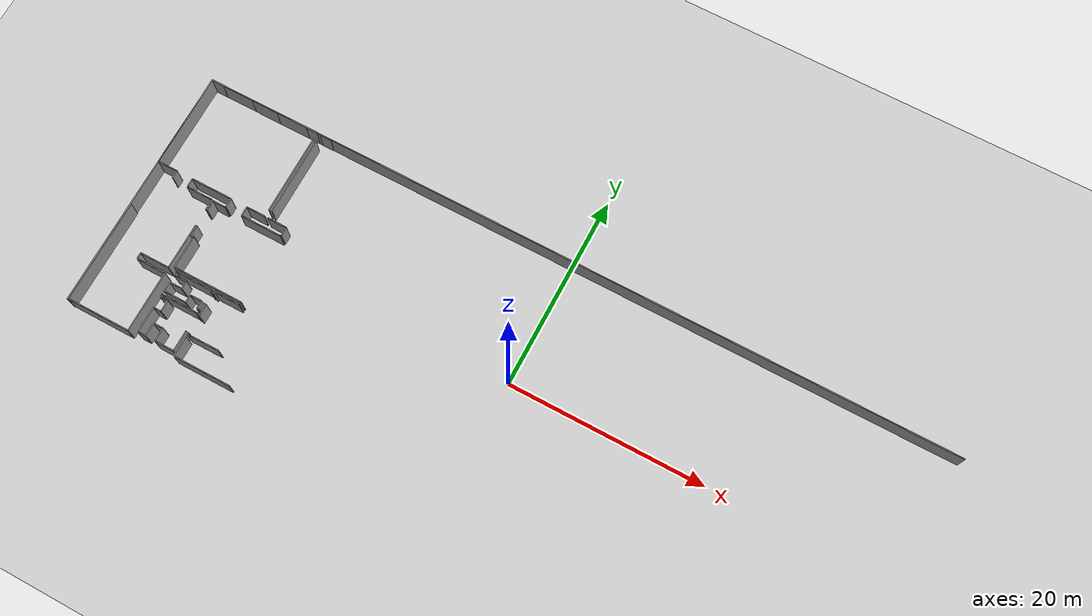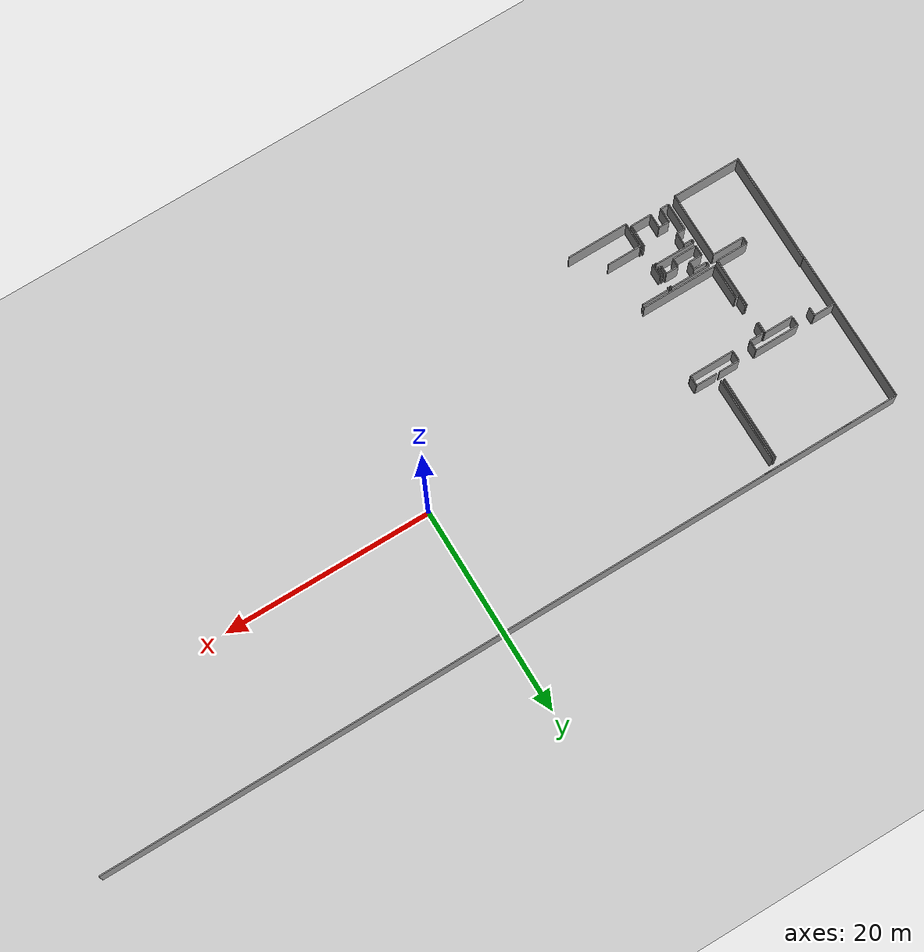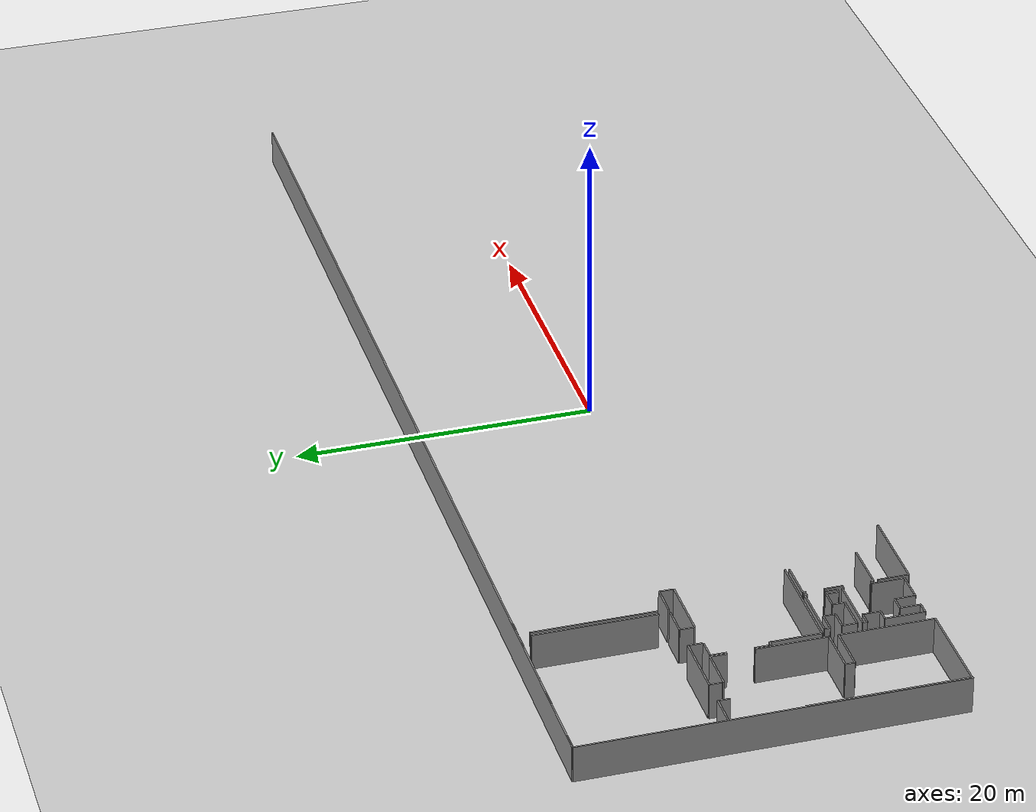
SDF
<sdf version="1.6">
 <world name="default">
  <model name="ground_plane">
   <static>1</static>
   <link name="link">
    <collision name="collision">
     <geometry><plane><normal>0 0 1</normal><size>100 100</size></plane></geometry>
     <surface><friction><ode><mu>100</mu><mu2>50</mu2></ode></friction></surface>
    </collision>
    <visual name="visual">
     <cast_shadows>0</cast_shadows>
     <geometry><plane><normal>0 0 1</normal><size>100 100</size></plane></geometry>
     <material>
      <script><uri>file://media/materials/scripts/gazebo.material</uri><name>Gazebo/Grey</name></script>
     </material>
    </visual>
   </link>
  </model>
  <model name="50052751">
   <static>1</static>
   <link name="Wall_0">
    <collision name="Wall_0_Collision">
     <geometry><box><size>2.06881151815 0.1 2.5</size></box></geometry>
     <pose>1.03440575908 0 1.25 0 0 0</pose>
    </collision>
    <visual name="Wall_0_Visual">
     <pose>1.03440575908 0 1.25 0 0 0</pose>
     <geometry><box><size>2.06881151815 0.1 2.5</size></box></geometry>
     <material>
      <script><uri>file://media/materials/scripts/gazebo.material</uri><name>Gazebo/Grey</name></script>
      <ambient>1 1 1 1</ambient>
     </material>
    </visual>
    <pose>0.0 -9.61859063008 0 0 0 0.0</pose>
   </link>
   <link name="Wall_1">
    <collision name="Wall_1_Collision">
     <geometry><box><size>0.788015965856 0.1 2.5</size></box></geometry>
     <pose>0.394007982928 0 1.25 0 0 0</pose>
    </collision>
    <visual name="Wall_1_Visual">
     <pose>0.394007982928 0 1.25 0 0 0</pose>
     <geometry><box><size>0.788015965856 0.1 2.5</size></box></geometry>
     <material>
      <script><uri>file://media/materials/scripts/gazebo.material</uri><name>Gazebo/Grey</name></script>
      <ambient>1 1 1 1</ambient>
     </material>
    </visual>
    <pose>2.06881151815 -9.61859063008 0 0 0 -1.57079632679</pose>
   </link>
   <link name="Wall_2">
    <collision name="Wall_2_Collision">
     <geometry><box><size>0.789919079603 0.1 2.5</size></box></geometry>
     <pose>0.394959539802 0 1.25 0 0 0</pose>
    </collision>
    <visual name="Wall_2_Visual">
     <pose>0.394959539802 0 1.25 0 0 0</pose>
     <geometry><box><size>0.789919079603 0.1 2.5</size></box></geometry>
     <material>
      <script><uri>file://media/materials/scripts/gazebo.material</uri><name>Gazebo/Grey</name></script>
      <ambient>1 1 1 1</ambient>
     </material>
    </visual>
    <pose>3.77565080146 -10.4066065959 0 0 0 1.57079632679</pose>
   </link>
   <link name="Wall_3">
    <collision name="Wall_3_Collision">
     <geometry><box><size>4.24952612468 0.1 2.5</size></box></geometry>
     <pose>2.12476306234 0 1.25 0 0 0</pose>
    </collision>
    <visual name="Wall_3_Visual">
     <pose>2.12476306234 0 1.25 0 0 0</pose>
     <geometry><box><size>4.24952612468 0.1 2.5</size></box></geometry>
     <material>
      <script><uri>file://media/materials/scripts/gazebo.material</uri><name>Gazebo/Grey</name></script>
      <ambient>1 1 1 1</ambient>
     </material>
    </visual>
    <pose>3.77565080146 -9.61668751634 0 0 0 0.0</pose>
   </link>
   <link name="Wall_4">
    <collision name="Wall_4_Collision">
     <geometry><box><size>0.919077065957 0.1 2.5</size></box></geometry>
     <pose>0.459538532978 0 1.25 0 0 0</pose>
    </collision>
    <visual name="Wall_4_Visual">
     <pose>0.459538532978 0 1.25 0 0 0</pose>
     <geometry><box><size>0.919077065957 0.1 2.5</size></box></geometry>
     <material>
      <script><uri>file://media/materials/scripts/gazebo.material</uri><name>Gazebo/Grey</name></script>
      <ambient>1 1 1 1</ambient>
     </material>
    </visual>
    <pose>8.02517692614 -9.61668751634 0 0 0 -1.57079632679</pose>
   </link>
   <link name="Wall_5">
    <collision name="Wall_5_Collision">
     <geometry><box><size>0.919077065957 0.1 2.5</size></box></geometry>
     <pose>0.459538532978 0 1.25 0 0 0</pose>
    </collision>
    <visual name="Wall_5_Visual">
     <pose>0.459538532978 0 1.25 0 0 0</pose>
     <geometry><box><size>0.919077065957 0.1 2.5</size></box></geometry>
     <material>
      <script><uri>file://media/materials/scripts/gazebo.material</uri><name>Gazebo/Grey</name></script>
      <ambient>1 1 1 1</ambient>
     </material>
    </visual>
    <pose>9.77096660416 -10.5357645823 0 0 0 1.57079632679</pose>
   </link>
   <link name="Wall_6">
    <collision name="Wall_6_Collision">
     <geometry><box><size>1.95551281303 0.1 2.5</size></box></geometry>
     <pose>0.977756406515 0 1.25 0 0 0</pose>
    </collision>
    <visual name="Wall_6_Visual">
     <pose>0.977756406515 0 1.25 0 0 0</pose>
     <geometry><box><size>1.95551281303 0.1 2.5</size></box></geometry>
     <material>
      <script><uri>file://media/materials/scripts/gazebo.material</uri><name>Gazebo/Grey</name></script>
      <ambient>1 1 1 1</ambient>
     </material>
    </visual>
    <pose>9.77096660416 -9.61668751634 0 0 0 0.0</pose>
   </link>
   <link name="Wall_7">
    <collision name="Wall_7_Collision">
     <geometry><box><size>8.12515383503 0.1 2.5</size></box></geometry>
     <pose>4.06257691751 0 1.25 0 0 0</pose>
    </collision>
    <visual name="Wall_7_Visual">
     <pose>4.06257691751 0 1.25 0 0 0</pose>
     <geometry><box><size>8.12515383503 0.1 2.5</size></box></geometry>
     <material>
      <script><uri>file://media/materials/scripts/gazebo.material</uri><name>Gazebo/Grey</name></script>
      <ambient>1 1 1 1</ambient>
     </material>
    </visual>
    <pose>11.7264794172 -8.89629552565 0 0 0 1.57079632679</pose>
   </link>
   <link name="Wall_8">
    <collision name="Wall_8_Collision">
     <geometry><box><size>1.17663179316 0.1 2.5</size></box></geometry>
     <pose>0.588315896582 0 1.25 0 0 0</pose>
    </collision>
    <visual name="Wall_8_Visual">
     <pose>0.588315896582 0 1.25 0 0 0</pose>
     <geometry><box><size>1.17663179316 0.1 2.5</size></box></geometry>
     <material>
      <script><uri>file://media/materials/scripts/gazebo.material</uri><name>Gazebo/Grey</name></script>
      <ambient>1 1 1 1</ambient>
     </material>
    </visual>
    <pose>11.7264794172 -0.00786620349107 0 0 0 3.14159265359</pose>
   </link>
   <link name="Wall_9">
    <collision name="Wall_9_Collision">
     <geometry><box><size>2.75025311413 0.1 2.5</size></box></geometry>
     <pose>1.37512655706 0 1.25 0 0 0</pose>
    </collision>
    <visual name="Wall_9_Visual">
     <pose>1.37512655706 0 1.25 0 0 0</pose>
     <geometry><box><size>2.75025311413 0.1 2.5</size></box></geometry>
     <material>
      <script><uri>file://media/materials/scripts/gazebo.material</uri><name>Gazebo/Grey</name></script>
      <ambient>1 1 1 1</ambient>
     </material>
    </visual>
    <pose>7.28232819323 -0.00786620349107 0 0 0 3.14159265359</pose>
   </link>
   <link name="Wall_10">
    <collision name="Wall_10_Collision">
     <geometry><box><size>1.28675864204 0.1 2.5</size></box></geometry>
     <pose>0.64337932102 0 1.25 0 0 0</pose>
    </collision>
    <visual name="Wall_10_Visual">
     <pose>0.64337932102 0 1.25 0 0 0</pose>
     <geometry><box><size>1.28675864204 0.1 2.5</size></box></geometry>
     <material>
      <script><uri>file://media/materials/scripts/gazebo.material</uri><name>Gazebo/Grey</name></script>
      <ambient>1 1 1 1</ambient>
     </material>
    </visual>
    <pose>1.28980362404 -0.00786620349107 0 0 0 3.14159265359</pose>
   </link>
   <link name="Wall_11">
    <collision name="Wall_11_Collision">
     <geometry><box><size>9.61072490897 0.1 2.5</size></box></geometry>
     <pose>4.80536245448 0 1.25 0 0 0</pose>
    </collision>
    <visual name="Wall_11_Visual">
     <pose>4.80536245448 0 1.25 0 0 0</pose>
     <geometry><box><size>9.61072490897 0.1 2.5</size></box></geometry>
     <material>
      <script><uri>file://media/materials/scripts/gazebo.material</uri><name>Gazebo/Grey</name></script>
      <ambient>1 1 1 1</ambient>
     </material>
    </visual>
    <pose>0.00304498199655 -0.00786620349107 0 0 0 -1.57111315847</pose>
   </link>
   <link name="Wall_12">
    <collision name="Wall_12_Collision">
     <geometry><box><size>10.5143228341 0.1 2.5</size></box></geometry>
     <pose>5.25716141703 0 1.25 0 0 0</pose>
    </collision>
    <visual name="Wall_12_Visual">
     <pose>5.25716141703 0 1.25 0 0 0</pose>
     <geometry><box><size>10.5143228341 0.1 2.5</size></box></geometry>
     <material>
      <script><uri>file://media/materials/scripts/gazebo.material</uri><name>Gazebo/Grey</name></script>
      <ambient>1 1 1 1</ambient>
     </material>
    </visual>
    <pose>0.0749826816649 -24.9932122276 0 0 0 1.57079632679</pose>
   </link>
   <link name="Wall_13">
    <collision name="Wall_13_Collision">
     <geometry><box><size>2.73617007239 0.1 2.5</size></box></geometry>
     <pose>1.3680850362 0 1.25 0 0 0</pose>
    </collision>
    <visual name="Wall_13_Visual">
     <pose>1.3680850362 0 1.25 0 0 0</pose>
     <geometry><box><size>2.73617007239 0.1 2.5</size></box></geometry>
     <material>
      <script><uri>file://media/materials/scripts/gazebo.material</uri><name>Gazebo/Grey</name></script>
      <ambient>1 1 1 1</ambient>
     </material>
    </visual>
    <pose>3.78732323245 -10.5291671213 0 0 0 0.0</pose>
   </link>
   <link name="Wall_14">
    <collision name="Wall_14_Collision">
     <geometry><box><size>1.10824657249 0.1 2.5</size></box></geometry>
     <pose>0.554123286246 0 1.25 0 0 0</pose>
    </collision>
    <visual name="Wall_14_Visual">
     <pose>0.554123286246 0 1.25 0 0 0</pose>
     <geometry><box><size>1.10824657249 0.1 2.5</size></box></geometry>
     <material>
      <script><uri>file://media/materials/scripts/gazebo.material</uri><name>Gazebo/Grey</name></script>
      <ambient>1 1 1 1</ambient>
     </material>
    </visual>
    <pose>6.52349330485 -10.5291671213 0 0 0 -1.57079632679</pose>
   </link>
   <link name="Wall_15">
    <collision name="Wall_15_Collision">
     <geometry><box><size>4.72378207064 0.1 2.5</size></box></geometry>
     <pose>2.36189103532 0 1.25 0 0 0</pose>
    </collision>
    <visual name="Wall_15_Visual">
     <pose>2.36189103532 0 1.25 0 0 0</pose>
     <geometry><box><size>4.72378207064 0.1 2.5</size></box></geometry>
     <material>
      <script><uri>file://media/materials/scripts/gazebo.material</uri><name>Gazebo/Grey</name></script>
      <ambient>1 1 1 1</ambient>
     </material>
    </visual>
    <pose>6.52349330485 -13.4069288565 0 0 0 -1.57079632679</pose>
   </link>
   <link name="Wall_16">
    <collision name="Wall_16_Collision">
     <geometry><box><size>3.02810772131 0.1 2.5</size></box></geometry>
     <pose>1.51405386066 0 1.25 0 0 0</pose>
    </collision>
    <visual name="Wall_16_Visual">
     <pose>1.51405386066 0 1.25 0 0 0</pose>
     <geometry><box><size>3.02810772131 0.1 2.5</size></box></geometry>
     <material>
      <script><uri>file://media/materials/scripts/gazebo.material</uri><name>Gazebo/Grey</name></script>
      <ambient>1 1 1 1</ambient>
     </material>
    </visual>
    <pose>6.52349330485 -18.1307109272 0 0 0 3.14159265359</pose>
   </link>
   <link name="Wall_17">
    <collision name="Wall_17_Collision">
     <geometry><box><size>0.614198243553 0.1 2.5</size></box></geometry>
     <pose>0.307099121776 0 1.25 0 0 0</pose>
    </collision>
    <visual name="Wall_17_Visual">
     <pose>0.307099121776 0 1.25 0 0 0</pose>
     <geometry><box><size>0.614198243553 0.1 2.5</size></box></geometry>
     <material>
      <script><uri>file://media/materials/scripts/gazebo.material</uri><name>Gazebo/Grey</name></script>
      <ambient>1 1 1 1</ambient>
     </material>
    </visual>
    <pose>3.49538558353 -18.1307109272 0 0 0 -1.57079632679</pose>
   </link>
   <link name="Wall_18">
    <collision name="Wall_18_Collision">
     <geometry><box><size>3.02810772131 0.1 2.5</size></box></geometry>
     <pose>1.51405386066 0 1.25 0 0 0</pose>
    </collision>
    <visual name="Wall_18_Visual">
     <pose>1.51405386066 0 1.25 0 0 0</pose>
     <geometry><box><size>3.02810772131 0.1 2.5</size></box></geometry>
     <material>
      <script><uri>file://media/materials/scripts/gazebo.material</uri><name>Gazebo/Grey</name></script>
      <ambient>1 1 1 1</ambient>
     </material>
    </visual>
    <pose>3.49538558353 -18.7449091707 0 0 0 0.0</pose>
   </link>
   <link name="Wall_19">
    <collision name="Wall_19_Collision">
     <geometry><box><size>6.24081747617 0.1 2.5</size></box></geometry>
     <pose>3.12040873808 0 1.25 0 0 0</pose>
    </collision>
    <visual name="Wall_19_Visual">
     <pose>3.12040873808 0 1.25 0 0 0</pose>
     <geometry><box><size>6.24081747617 0.1 2.5</size></box></geometry>
     <material>
      <script><uri>file://media/materials/scripts/gazebo.material</uri><name>Gazebo/Grey</name></script>
      <ambient>1 1 1 1</ambient>
     </material>
    </visual>
    <pose>6.52349330485 -18.7449091707 0 0 0 -1.57079632679</pose>
   </link>
   <link name="Wall_20">
    <collision name="Wall_20_Collision">
     <geometry><box><size>6.4485149679 0.1 2.5</size></box></geometry>
     <pose>3.22425748395 0 1.25 0 0 0</pose>
    </collision>
    <visual name="Wall_20_Visual">
     <pose>3.22425748395 0 1.25 0 0 0</pose>
     <geometry><box><size>6.4485149679 0.1 2.5</size></box></geometry>
     <material>
      <script><uri>file://media/materials/scripts/gazebo.material</uri><name>Gazebo/Grey</name></script>
      <ambient>1 1 1 1</ambient>
     </material>
    </visual>
    <pose>6.52349330485 -24.9857266469 0 0 0 -3.14043183091</pose>
   </link>
   <link name="Wall_21">
    <collision name="Wall_21_Collision">
     <geometry><box><size>3.3520176812 0.1 2.5</size></box></geometry>
     <pose>1.6760088406 0 1.25 0 0 0</pose>
    </collision>
    <visual name="Wall_21_Visual">
     <pose>1.6760088406 0 1.25 0 0 0</pose>
     <geometry><box><size>3.3520176812 0.1 2.5</size></box></geometry>
     <material>
      <script><uri>file://media/materials/scripts/gazebo.material</uri><name>Gazebo/Grey</name></script>
      <ambient>1 1 1 1</ambient>
     </material>
    </visual>
    <pose>6.97567313133 -17.8328101885 0 0 0 1.57079632679</pose>
   </link>
   <link name="Wall_22">
    <collision name="Wall_22_Collision">
     <geometry><box><size>0.312745025895 0.1 2.5</size></box></geometry>
     <pose>0.156372512948 0 1.25 0 0 0</pose>
    </collision>
    <visual name="Wall_22_Visual">
     <pose>0.156372512948 0 1.25 0 0 0</pose>
     <geometry><box><size>0.312745025895 0.1 2.5</size></box></geometry>
     <material>
      <script><uri>file://media/materials/scripts/gazebo.material</uri><name>Gazebo/Grey</name></script>
      <ambient>1 1 1 1</ambient>
     </material>
    </visual>
    <pose>6.97567313133 -14.4807925073 0 0 0 3.14159265359</pose>
   </link>
   <link name="Wall_23">
    <collision name="Wall_23_Collision">
     <geometry><box><size>1.07310240528 0.1 2.5</size></box></geometry>
     <pose>0.536551202641 0 1.25 0 0 0</pose>
    </collision>
    <visual name="Wall_23_Visual">
     <pose>0.536551202641 0 1.25 0 0 0</pose>
     <geometry><box><size>1.07310240528 0.1 2.5</size></box></geometry>
     <material>
      <script><uri>file://media/materials/scripts/gazebo.material</uri><name>Gazebo/Grey</name></script>
      <ambient>1 1 1 1</ambient>
     </material>
    </visual>
    <pose>6.66292810544 -14.4807925073 0 0 0 1.57079632679</pose>
   </link>
   <link name="Wall_24">
    <collision name="Wall_24_Collision">
     <geometry><box><size>1.04709318406 0.1 2.5</size></box></geometry>
     <pose>0.523546592031 0 1.25 0 0 0</pose>
    </collision>
    <visual name="Wall_24_Visual">
     <pose>0.523546592031 0 1.25 0 0 0</pose>
     <geometry><box><size>1.04709318406 0.1 2.5</size></box></geometry>
     <material>
      <script><uri>file://media/materials/scripts/gazebo.material</uri><name>Gazebo/Grey</name></script>
      <ambient>1 1 1 1</ambient>
     </material>
    </visual>
    <pose>6.66292810544 -11.639570556 0 0 0 1.57079632679</pose>
   </link>
   <link name="Wall_25">
    <collision name="Wall_25_Collision">
     <geometry><box><size>1.33852333598 0.1 2.5</size></box></geometry>
     <pose>0.66926166799 0 1.25 0 0 0</pose>
    </collision>
    <visual name="Wall_25_Visual">
     <pose>0.66926166799 0 1.25 0 0 0</pose>
     <geometry><box><size>1.33852333598 0.1 2.5</size></box></geometry>
     <material>
      <script><uri>file://media/materials/scripts/gazebo.material</uri><name>Gazebo/Grey</name></script>
      <ambient>1 1 1 1</ambient>
     </material>
    </visual>
    <pose>6.66292810544 -10.592477372 0 0 0 0.0</pose>
   </link>
   <link name="Wall_26">
    <collision name="Wall_26_Collision">
     <geometry><box><size>4.28708090263 0.1 2.5</size></box></geometry>
     <pose>2.14354045132 0 1.25 0 0 0</pose>
    </collision>
    <visual name="Wall_26_Visual">
     <pose>2.14354045132 0 1.25 0 0 0</pose>
     <geometry><box><size>4.28708090263 0.1 2.5</size></box></geometry>
     <material>
      <script><uri>file://media/materials/scripts/gazebo.material</uri><name>Gazebo/Grey</name></script>
      <ambient>1 1 1 1</ambient>
     </material>
    </visual>
    <pose>9.75345795768 -10.592477372 0 0 0 0.0</pose>
   </link>
   <link name="Wall_33">
    <collision name="Wall_33_Collision">
     <geometry><box><size>7.18932945877 0.1 2.5</size></box></geometry>
     <pose>3.59466472939 0 1.25 0 0 0</pose>
    </collision>
    <visual name="Wall_33_Visual">
     <pose>3.59466472939 0 1.25 0 0 0</pose>
     <geometry><box><size>7.18932945877 0.1 2.5</size></box></geometry>
     <material>
      <script><uri>file://media/materials/scripts/gazebo.material</uri><name>Gazebo/Grey</name></script>
      <ambient>1 1 1 1</ambient>
     </material>
    </visual>
    <pose>14.1650024994 -17.8339520568 0 0 0 3.14143382539</pose>
   </link>
   <link name="Wall_34">
    <collision name="Wall_34_Collision">
     <geometry><box><size>0.203125674019 0.1 2.5</size></box></geometry>
     <pose>0.10156283701 0 1.25 0 0 0</pose>
    </collision>
    <visual name="Wall_34_Visual">
     <pose>0.10156283701 0 1.25 0 0 0</pose>
     <geometry><box><size>0.203125674019 0.1 2.5</size></box></geometry>
     <material>
      <script><uri>file://media/materials/scripts/gazebo.material</uri><name>Gazebo/Grey</name></script>
      <ambient>1 1 1 1</ambient>
     </material>
    </visual>
    <pose>11.465372211 -22.7219094067 0 0 0 1.57079632679</pose>
   </link>
   <link name="Wall_35">
    <collision name="Wall_35_Collision">
     <geometry><box><size>1.24032266659 0.1 2.5</size></box></geometry>
     <pose>0.620161333296 0 1.25 0 0 0</pose>
    </collision>
    <visual name="Wall_35_Visual">
     <pose>0.620161333296 0 1.25 0 0 0</pose>
     <geometry><box><size>1.24032266659 0.1 2.5</size></box></geometry>
     <material>
      <script><uri>file://media/materials/scripts/gazebo.material</uri><name>Gazebo/Grey</name></script>
      <ambient>1 1 1 1</ambient>
     </material>
    </visual>
    <pose>11.465372211 -20.7415292407 0 0 0 1.57079632679</pose>
   </link>
   <link name="Wall_36">
    <collision name="Wall_36_Collision">
     <geometry><box><size>0.219492452251 0.1 2.5</size></box></geometry>
     <pose>0.109746226125 0 1.25 0 0 0</pose>
    </collision>
    <visual name="Wall_36_Visual">
     <pose>0.109746226125 0 1.25 0 0 0</pose>
     <geometry><box><size>0.219492452251 0.1 2.5</size></box></geometry>
     <material>
      <script><uri>file://media/materials/scripts/gazebo.material</uri><name>Gazebo/Grey</name></script>
      <ambient>1 1 1 1</ambient>
     </material>
    </visual>
    <pose>11.465372211 -18.3295228767 0 0 0 1.57079632679</pose>
   </link>
   <link name="Wall_37">
    <collision name="Wall_37_Collision">
     <geometry><box><size>2.68009165396 0.1 2.5</size></box></geometry>
     <pose>1.34004582698 0 1.25 0 0 0</pose>
    </collision>
    <visual name="Wall_37_Visual">
     <pose>1.34004582698 0 1.25 0 0 0</pose>
     <geometry><box><size>2.68009165396 0.1 2.5</size></box></geometry>
     <material>
      <script><uri>file://media/materials/scripts/gazebo.material</uri><name>Gazebo/Grey</name></script>
      <ambient>1 1 1 1</ambient>
     </material>
    </visual>
    <pose>11.465372211 -18.1100304244 0 0 0 0.0</pose>
   </link>
   <link name="Wall_42">
    <collision name="Wall_42_Collision">
     <geometry><box><size>3.27159515163 0.1 2.5</size></box></geometry>
     <pose>1.63579757582 0 1.25 0 0 0</pose>
    </collision>
    <visual name="Wall_42_Visual">
     <pose>1.63579757582 0 1.25 0 0 0</pose>
     <geometry><box><size>3.27159515163 0.1 2.5</size></box></geometry>
     <material>
      <script><uri>file://media/materials/scripts/gazebo.material</uri><name>Gazebo/Grey</name></script>
      <ambient>1 1 1 1</ambient>
     </material>
    </visual>
    <pose>14.7369516178 -22.7117594667 0 0 0 -3.13849020485</pose>
   </link>
   <link name="Wall_43">
    <collision name="Wall_43_Collision">
     <geometry><box><size>5.82492368514 0.1 2.5</size></box></geometry>
     <pose>2.91246184257 0 1.25 0 0 0</pose>
    </collision>
    <visual name="Wall_43_Visual">
     <pose>2.91246184257 0 1.25 0 0 0</pose>
     <geometry><box><size>5.82492368514 0.1 2.5</size></box></geometry>
     <material>
      <script><uri>file://media/materials/scripts/gazebo.material</uri><name>Gazebo/Grey</name></script>
      <ambient>1 1 1 1</ambient>
     </material>
    </visual>
    <pose>11.4799627497 -25.0432006821 0 0 0 0.0</pose>
   </link>
   <link name="Wall_51">
    <collision name="Wall_51_Collision">
     <geometry><box><size>2.04561685838 0.1 2.5</size></box></geometry>
     <pose>1.02280842919 0 1.25 0 0 0</pose>
    </collision>
    <visual name="Wall_51_Visual">
     <pose>1.02280842919 0 1.25 0 0 0</pose>
     <geometry><box><size>2.04561685838 0.1 2.5</size></box></geometry>
     <material>
      <script><uri>file://media/materials/scripts/gazebo.material</uri><name>Gazebo/Grey</name></script>
      <ambient>1 1 1 1</ambient>
     </material>
    </visual>
    <pose>11.489732067 -22.9976071516 0 0 0 -1.57557207663</pose>
   </link>
   <link name="Wall_52">
    <collision name="Wall_52_Collision">
     <geometry><box><size>2.61855764278 0.1 2.5</size></box></geometry>
     <pose>1.30927882139 0 1.25 0 0 0</pose>
    </collision>
    <visual name="Wall_52_Visual">
     <pose>1.30927882139 0 1.25 0 0 0</pose>
     <geometry><box><size>2.61855764278 0.1 2.5</size></box></geometry>
     <material>
      <script><uri>file://media/materials/scripts/gazebo.material</uri><name>Gazebo/Grey</name></script>
      <ambient>1 1 1 1</ambient>
     </material>
    </visual>
    <pose>7.38205135362 -24.6492561363 0 0 0 1.57079632679</pose>
   </link>
   <link name="Wall_53">
    <collision name="Wall_53_Collision">
     <geometry><box><size>0.806032109335 0.1 2.5</size></box></geometry>
     <pose>0.403016054668 0 1.25 0 0 0</pose>
    </collision>
    <visual name="Wall_53_Visual">
     <pose>0.403016054668 0 1.25 0 0 0</pose>
     <geometry><box><size>0.806032109335 0.1 2.5</size></box></geometry>
     <material>
      <script><uri>file://media/materials/scripts/gazebo.material</uri><name>Gazebo/Grey</name></script>
      <ambient>1 1 1 1</ambient>
     </material>
    </visual>
    <pose>7.38205135362 -22.0306984935 0 0 0 0.0</pose>
   </link>
   <link name="Wall_54">
    <collision name="Wall_54_Collision">
     <geometry><box><size>1.16381749393 0.1 2.5</size></box></geometry>
     <pose>0.581908746965 0 1.25 0 0 0</pose>
    </collision>
    <visual name="Wall_54_Visual">
     <pose>0.581908746965 0 1.25 0 0 0</pose>
     <geometry><box><size>1.16381749393 0.1 2.5</size></box></geometry>
     <material>
      <script><uri>file://media/materials/scripts/gazebo.material</uri><name>Gazebo/Grey</name></script>
      <ambient>1 1 1 1</ambient>
     </material>
    </visual>
    <pose>8.18808346296 -22.0306984935 0 0 0 1.57079632679</pose>
   </link>
   <link name="Wall_55">
    <collision name="Wall_55_Collision">
     <geometry><box><size>0.820368899569 0.1 2.5</size></box></geometry>
     <pose>0.410184449784 0 1.25 0 0 0</pose>
    </collision>
    <visual name="Wall_55_Visual">
     <pose>0.410184449784 0 1.25 0 0 0</pose>
     <geometry><box><size>0.820368899569 0.1 2.5</size></box></geometry>
     <material>
      <script><uri>file://media/materials/scripts/gazebo.material</uri><name>Gazebo/Grey</name></script>
      <ambient>1 1 1 1</ambient>
     </material>
    </visual>
    <pose>8.18808346296 -20.8668809996 0 0 0 3.14159265359</pose>
   </link>
   <link name="Wall_56">
    <collision name="Wall_56_Collision">
     <geometry><box><size>0.276585864686 0.1 2.5</size></box></geometry>
     <pose>0.138292932343 0 1.25 0 0 0</pose>
    </collision>
    <visual name="Wall_56_Visual">
     <pose>0.138292932343 0 1.25 0 0 0</pose>
     <geometry><box><size>0.276585864686 0.1 2.5</size></box></geometry>
     <material>
      <script><uri>file://media/materials/scripts/gazebo.material</uri><name>Gazebo/Grey</name></script>
      <ambient>1 1 1 1</ambient>
     </material>
    </visual>
    <pose>7.36771456339 -20.8668809996 0 0 0 1.57079632679</pose>
   </link>
   <link name="Wall_57">
    <collision name="Wall_57_Collision">
     <geometry><box><size>3.8286842379 0.1 2.5</size></box></geometry>
     <pose>1.91434211895 0 1.25 0 0 0</pose>
    </collision>
    <visual name="Wall_57_Visual">
     <pose>1.91434211895 0 1.25 0 0 0</pose>
     <geometry><box><size>3.8286842379 0.1 2.5</size></box></geometry>
     <material>
      <script><uri>file://media/materials/scripts/gazebo.material</uri><name>Gazebo/Grey</name></script>
      <ambient>1 1 1 1</ambient>
     </material>
    </visual>
    <pose>7.36771456339 -20.5902951349 0 0 0 0.0</pose>
   </link>
   <link name="Wall_58">
    <collision name="Wall_58_Collision">
     <geometry><box><size>0.129665483353 0.1 2.5</size></box></geometry>
     <pose>0.0648327416764 0 1.25 0 0 0</pose>
    </collision>
    <visual name="Wall_58_Visual">
     <pose>0.0648327416764 0 1.25 0 0 0</pose>
     <geometry><box><size>0.129665483353 0.1 2.5</size></box></geometry>
     <material>
      <script><uri>file://media/materials/scripts/gazebo.material</uri><name>Gazebo/Grey</name></script>
      <ambient>1 1 1 1</ambient>
     </material>
    </visual>
    <pose>11.1963988013 -20.5902951349 0 0 0 -1.57079632679</pose>
   </link>
   <link name="Wall_59">
    <collision name="Wall_59_Collision">
     <geometry><box><size>2.15026478656 0.1 2.5</size></box></geometry>
     <pose>1.07513239328 0 1.25 0 0 0</pose>
    </collision>
    <visual name="Wall_59_Visual">
     <pose>1.07513239328 0 1.25 0 0 0</pose>
     <geometry><box><size>2.15026478656 0.1 2.5</size></box></geometry>
     <material>
      <script><uri>file://media/materials/scripts/gazebo.material</uri><name>Gazebo/Grey</name></script>
      <ambient>1 1 1 1</ambient>
     </material>
    </visual>
    <pose>11.1963988013 -22.5038125712 0 0 0 -1.57079632679</pose>
   </link>
   <link name="Wall_60">
    <collision name="Wall_60_Collision">
     <geometry><box><size>1.99217947124 0.1 2.5</size></box></geometry>
     <pose>0.996089735619 0 1.25 0 0 0</pose>
    </collision>
    <visual name="Wall_60_Visual">
     <pose>0.996089735619 0 1.25 0 0 0</pose>
     <geometry><box><size>1.99217947124 0.1 2.5</size></box></geometry>
     <material>
      <script><uri>file://media/materials/scripts/gazebo.material</uri><name>Gazebo/Grey</name></script>
      <ambient>1 1 1 1</ambient>
     </material>
    </visual>
    <pose>11.1963988013 -24.6540773578 0 0 0 3.14159265359</pose>
   </link>
   <link name="Wall_61">
    <collision name="Wall_61_Collision">
     <geometry><box><size>1.35324074896 0.1 2.5</size></box></geometry>
     <pose>0.676620374482 0 1.25 0 0 0</pose>
    </collision>
    <visual name="Wall_61_Visual">
     <pose>0.676620374482 0 1.25 0 0 0</pose>
     <geometry><box><size>1.35324074896 0.1 2.5</size></box></geometry>
     <material>
      <script><uri>file://media/materials/scripts/gazebo.material</uri><name>Gazebo/Grey</name></script>
      <ambient>1 1 1 1</ambient>
     </material>
    </visual>
    <pose>9.20421933005 -24.6540773578 0 0 0 1.57079632679</pose>
   </link>
   <link name="Wall_62">
    <collision name="Wall_62_Collision">
     <geometry><box><size>1.00623967561 0.1 2.5</size></box></geometry>
     <pose>0.503119837804 0 1.25 0 0 0</pose>
    </collision>
    <visual name="Wall_62_Visual">
     <pose>0.503119837804 0 1.25 0 0 0</pose>
     <geometry><box><size>1.00623967561 0.1 2.5</size></box></geometry>
     <material>
      <script><uri>file://media/materials/scripts/gazebo.material</uri><name>Gazebo/Grey</name></script>
      <ambient>1 1 1 1</ambient>
     </material>
    </visual>
    <pose>9.20421933005 -23.3008366088 0 0 0 3.14159265359</pose>
   </link>
   <link name="Wall_63">
    <collision name="Wall_63_Collision">
     <geometry><box><size>1.34524767122 0.1 2.5</size></box></geometry>
     <pose>0.672623835612 0 1.25 0 0 0</pose>
    </collision>
    <visual name="Wall_63_Visual">
     <pose>0.672623835612 0 1.25 0 0 0</pose>
     <geometry><box><size>1.34524767122 0.1 2.5</size></box></geometry>
     <material>
      <script><uri>file://media/materials/scripts/gazebo.material</uri><name>Gazebo/Grey</name></script>
      <ambient>1 1 1 1</ambient>
     </material>
    </visual>
    <pose>8.19797965445 -23.3008366088 0 0 0 -1.57079632679</pose>
   </link>
   <link name="Wall_64">
    <collision name="Wall_64_Collision">
     <geometry><box><size>0.81593446597 0.1 2.5</size></box></geometry>
     <pose>0.407967232985 0 1.25 0 0 0</pose>
    </collision>
    <visual name="Wall_64_Visual">
     <pose>0.407967232985 0 1.25 0 0 0</pose>
     <geometry><box><size>0.81593446597 0.1 2.5</size></box></geometry>
     <material>
      <script><uri>file://media/materials/scripts/gazebo.material</uri><name>Gazebo/Grey</name></script>
      <ambient>1 1 1 1</ambient>
     </material>
    </visual>
    <pose>8.19797965445 -24.64608428 0 0 0 -3.13770525286</pose>
   </link>
   <link name="Wall_65">
    <collision name="Wall_65_Collision">
     <geometry><box><size>0.969699891649 0.1 2.5</size></box></geometry>
     <pose>0.484849945825 0 1.25 0 0 0</pose>
    </collision>
    <visual name="Wall_65_Visual">
     <pose>0.484849945825 0 1.25 0 0 0</pose>
     <geometry><box><size>0.969699891649 0.1 2.5</size></box></geometry>
     <material>
      <script><uri>file://media/materials/scripts/gazebo.material</uri><name>Gazebo/Grey</name></script>
      <ambient>1 1 1 1</ambient>
     </material>
    </visual>
    <pose>7.39588064686 -20.24354781 0 0 0 1.57079632679</pose>
   </link>
   <link name="Wall_66">
    <collision name="Wall_66_Collision">
     <geometry><box><size>1.28345991154 0.1 2.5</size></box></geometry>
     <pose>0.641729955772 0 1.25 0 0 0</pose>
    </collision>
    <visual name="Wall_66_Visual">
     <pose>0.641729955772 0 1.25 0 0 0</pose>
     <geometry><box><size>1.28345991154 0.1 2.5</size></box></geometry>
     <material>
      <script><uri>file://media/materials/scripts/gazebo.material</uri><name>Gazebo/Grey</name></script>
      <ambient>1 1 1 1</ambient>
     </material>
    </visual>
    <pose>7.39588064686 -19.2738479184 0 0 0 0.0</pose>
   </link>
   <link name="Wall_67">
    <collision name="Wall_67_Collision">
     <geometry><box><size>0.782179750362 0.1 2.5</size></box></geometry>
     <pose>0.391089875181 0 1.25 0 0 0</pose>
    </collision>
    <visual name="Wall_67_Visual">
     <pose>0.391089875181 0 1.25 0 0 0</pose>
     <geometry><box><size>0.782179750362 0.1 2.5</size></box></geometry>
     <material>
      <script><uri>file://media/materials/scripts/gazebo.material</uri><name>Gazebo/Grey</name></script>
      <ambient>1 1 1 1</ambient>
     </material>
    </visual>
    <pose>8.6793405584 -19.2738479184 0 0 0 1.57079632679</pose>
   </link>
   <link name="Wall_68">
    <collision name="Wall_68_Collision">
     <geometry><box><size>1.29728920478 0.1 2.5</size></box></geometry>
     <pose>0.648644602389 0 1.25 0 0 0</pose>
    </collision>
    <visual name="Wall_68_Visual">
     <pose>0.648644602389 0 1.25 0 0 0</pose>
     <geometry><box><size>1.29728920478 0.1 2.5</size></box></geometry>
     <material>
      <script><uri>file://media/materials/scripts/gazebo.material</uri><name>Gazebo/Grey</name></script>
      <ambient>1 1 1 1</ambient>
     </material>
    </visual>
    <pose>8.6793405584 -18.491668168 0 0 0 3.14159265359</pose>
   </link>
   <link name="Wall_69">
    <collision name="Wall_69_Collision">
     <geometry><box><size>0.367300953333 0.1 2.5</size></box></geometry>
     <pose>0.183650476667 0 1.25 0 0 0</pose>
    </collision>
    <visual name="Wall_69_Visual">
     <pose>0.183650476667 0 1.25 0 0 0</pose>
     <geometry><box><size>0.367300953333 0.1 2.5</size></box></geometry>
     <material>
      <script><uri>file://media/materials/scripts/gazebo.material</uri><name>Gazebo/Grey</name></script>
      <ambient>1 1 1 1</ambient>
     </material>
    </visual>
    <pose>7.38205135362 -18.491668168 0 0 0 1.57079632679</pose>
   </link>
   <link name="Wall_70">
    <collision name="Wall_70_Collision">
     <geometry><box><size>3.81751930392 0.1 2.5</size></box></geometry>
     <pose>1.90875965196 0 1.25 0 0 0</pose>
    </collision>
    <visual name="Wall_70_Visual">
     <pose>1.90875965196 0 1.25 0 0 0</pose>
     <geometry><box><size>3.81751930392 0.1 2.5</size></box></geometry>
     <material>
      <script><uri>file://media/materials/scripts/gazebo.material</uri><name>Gazebo/Grey</name></script>
      <ambient>1 1 1 1</ambient>
     </material>
    </visual>
    <pose>7.38205135362 -18.1243672147 0 0 0 0.0</pose>
   </link>
   <link name="Wall_71">
    <collision name="Wall_71_Collision">
     <geometry><box><size>0.189042632285 0.1 2.5</size></box></geometry>
     <pose>0.0945213161427 0 1.25 0 0 0</pose>
    </collision>
    <visual name="Wall_71_Visual">
     <pose>0.0945213161427 0 1.25 0 0 0</pose>
     <geometry><box><size>0.189042632285 0.1 2.5</size></box></geometry>
     <material>
      <script><uri>file://media/materials/scripts/gazebo.material</uri><name>Gazebo/Grey</name></script>
      <ambient>1 1 1 1</ambient>
     </material>
    </visual>
    <pose>11.1995706575 -18.1243672147 0 0 0 -1.57079632679</pose>
   </link>
   <link name="Wall_72">
    <collision name="Wall_72_Collision">
     <geometry><box><size>0.774313546871 0.1 2.5</size></box></geometry>
     <pose>0.387156773436 0 1.25 0 0 0</pose>
    </collision>
    <visual name="Wall_72_Visual">
     <pose>0.387156773436 0 1.25 0 0 0</pose>
     <geometry><box><size>0.774313546871 0.1 2.5</size></box></geometry>
     <material>
      <script><uri>file://media/materials/scripts/gazebo.material</uri><name>Gazebo/Grey</name></script>
      <ambient>1 1 1 1</ambient>
     </material>
    </visual>
    <pose>11.1995706575 -19.4725329936 0 0 0 -1.57079632679</pose>
   </link>
   <link name="Wall_73">
    <collision name="Wall_73_Collision">
     <geometry><box><size>0.292698894418 0.1 2.5</size></box></geometry>
     <pose>0.146349447209 0 1.25 0 0 0</pose>
    </collision>
    <visual name="Wall_73_Visual">
     <pose>0.146349447209 0 1.25 0 0 0</pose>
     <geometry><box><size>0.292698894418 0.1 2.5</size></box></geometry>
     <material>
      <script><uri>file://media/materials/scripts/gazebo.material</uri><name>Gazebo/Grey</name></script>
      <ambient>1 1 1 1</ambient>
     </material>
    </visual>
    <pose>11.1995706575 -20.2468465405 0 0 0 3.14159265359</pose>
   </link>
   <link name="Wall_74">
    <collision name="Wall_74_Collision">
     <geometry><box><size>0.81085333083 0.1 2.5</size></box></geometry>
     <pose>0.405426665415 0 1.25 0 0 0</pose>
    </collision>
    <visual name="Wall_74_Visual">
     <pose>0.405426665415 0 1.25 0 0 0</pose>
     <geometry><box><size>0.81085333083 0.1 2.5</size></box></geometry>
     <material>
      <script><uri>file://media/materials/scripts/gazebo.material</uri><name>Gazebo/Grey</name></script>
      <ambient>1 1 1 1</ambient>
     </material>
    </visual>
    <pose>10.9068717631 -20.2468465405 0 0 0 1.57079632679</pose>
   </link>
   <link name="Wall_75">
    <collision name="Wall_75_Collision">
     <geometry><box><size>1.1924910744 0.1 2.5</size></box></geometry>
     <pose>0.596245537198 0 1.25 0 0 0</pose>
    </collision>
    <visual name="Wall_75_Visual">
     <pose>0.596245537198 0 1.25 0 0 0</pose>
     <geometry><box><size>1.1924910744 0.1 2.5</size></box></geometry>
     <material>
      <script><uri>file://media/materials/scripts/gazebo.material</uri><name>Gazebo/Grey</name></script>
      <ambient>1 1 1 1</ambient>
     </material>
    </visual>
    <pose>10.9068717631 -19.4359932097 0 0 0 3.14159265359</pose>
   </link>
   <link name="Wall_76">
    <collision name="Wall_76_Collision">
     <geometry><box><size>0.80133776209 0.1 2.5</size></box></geometry>
     <pose>0.400668881045 0 1.25 0 0 0</pose>
    </collision>
    <visual name="Wall_76_Visual">
     <pose>0.400668881045 0 1.25 0 0 0</pose>
     <geometry><box><size>0.80133776209 0.1 2.5</size></box></geometry>
     <material>
      <script><uri>file://media/materials/scripts/gazebo.material</uri><name>Gazebo/Grey</name></script>
      <ambient>1 1 1 1</ambient>
     </material>
    </visual>
    <pose>9.71438068872 -19.4359932097 0 0 0 -1.57079632679</pose>
   </link>
   <link name="Wall_77">
    <collision name="Wall_77_Collision">
     <geometry><box><size>2.31850837678 0.1 2.5</size></box></geometry>
     <pose>1.15925418839 0 1.25 0 0 0</pose>
    </collision>
    <visual name="Wall_77_Visual">
     <pose>1.15925418839 0 1.25 0 0 0</pose>
     <geometry><box><size>2.31850837678 0.1 2.5</size></box></geometry>
     <material>
      <script><uri>file://media/materials/scripts/gazebo.material</uri><name>Gazebo/Grey</name></script>
      <ambient>1 1 1 1</ambient>
     </material>
    </visual>
    <pose>9.71438068872 -20.2373309718 0 0 0 -3.13891125474</pose>
   </link>
   <link name="Wall_78">
    <collision name="Wall_78_Collision">
     <geometry><box><size>8.1047270808 0.1 2.5</size></box></geometry>
     <pose>4.0523635404 0 1.25 0 0 0</pose>
    </collision>
    <visual name="Wall_78_Visual">
     <pose>4.0523635404 0 1.25 0 0 0</pose>
     <geometry><box><size>8.1047270808 0.1 2.5</size></box></geometry>
     <material>
      <script><uri>file://media/materials/scripts/gazebo.material</uri><name>Gazebo/Grey</name></script>
      <ambient>1 1 1 1</ambient>
     </material>
    </visual>
    <pose>12.0384631976 -8.88842932216 0 0 0 1.57079632679</pose>
   </link>
   <link name="Wall_79">
    <collision name="Wall_79_Collision">
     <geometry><box><size>1.22370213986 0.1 2.5</size></box></geometry>
     <pose>0.611851069931 0 1.25 0 0 0</pose>
    </collision>
    <visual name="Wall_79_Visual">
     <pose>0.611851069931 0 1.25 0 0 0</pose>
     <geometry><box><size>1.22370213986 0.1 2.5</size></box></geometry>
     <material>
      <script><uri>file://media/materials/scripts/gazebo.material</uri><name>Gazebo/Grey</name></script>
      <ambient>1 1 1 1</ambient>
     </material>
    </visual>
    <pose>12.0384631976 -0.0204267542268 0 0 0 0.0</pose>
   </link>
   <link name="Wall_84">
    <collision name="Wall_84_Collision">
     <geometry><box><size>0.897508443481 0.1 2.5</size></box></geometry>
     <pose>0.448754221741 0 1.25 0 0 0</pose>
    </collision>
    <visual name="Wall_84_Visual">
     <pose>0.448754221741 0 1.25 0 0 0</pose>
     <geometry><box><size>0.897508443481 0.1 2.5</size></box></geometry>
     <material>
      <script><uri>file://media/materials/scripts/gazebo.material</uri><name>Gazebo/Grey</name></script>
      <ambient>1 1 1 1</ambient>
     </material>
    </visual>
    <pose>14.0481513153 -10.5243458998 0 0 0 1.57079632679</pose>
   </link>
   <link name="Wall_85">
    <collision name="Wall_85_Collision">
     <geometry><box><size>2.00972978394 0.1 2.5</size></box></geometry>
     <pose>1.00486489197 0 1.25 0 0 0</pose>
    </collision>
    <visual name="Wall_85_Visual">
     <pose>1.00486489197 0 1.25 0 0 0</pose>
     <geometry><box><size>2.00972978394 0.1 2.5</size></box></geometry>
     <material>
      <script><uri>file://media/materials/scripts/gazebo.material</uri><name>Gazebo/Grey</name></script>
      <ambient>1 1 1 1</ambient>
     </material>
    </visual>
    <pose>14.0481513153 -9.62683745632 0 0 0 3.13515334865</pose>
   </link>
   <link name="Wall_266">
    <collision name="Wall_266_Collision">
     <geometry><box><size>25.0720011368 0.1 2.5</size></box></geometry>
     <pose>12.5360005684 0 1.25 0 0 0</pose>
    </collision>
    <visual name="Wall_266_Visual">
     <pose>12.5360005684 0 1.25 0 0 0</pose>
     <geometry><box><size>25.0720011368 0.1 2.5</size></box></geometry>
     <material>
      <script><uri>file://media/materials/scripts/gazebo.material</uri><name>Gazebo/Grey</name></script>
      <ambient>1 1 1 1</ambient>
     </material>
    </visual>
    <pose>0.0 -25.0720011368 0 0 0 1.57079632679</pose>
   </link>
   <link name="Wall_267">
    <collision name="Wall_267_Collision">
     <geometry><box><size>78.1020119719 0.1 2.5</size></box></geometry>
     <pose>39.0510059859 0 1.25 0 0 0</pose>
    </collision>
    <visual name="Wall_267_Visual">
     <pose>39.0510059859 0 1.25 0 0 0</pose>
     <geometry><box><size>78.1020119719 0.1 2.5</size></box></geometry>
     <material>
      <script><uri>file://media/materials/scripts/gazebo.material</uri><name>Gazebo/Grey</name></script>
      <ambient>1 1 1 1</ambient>
     </material>
    </visual>
   </link>
   <pose>-39.05 12.5220011368 0 0 0 0</pose>
  </model>
 </world>
</sdf>
